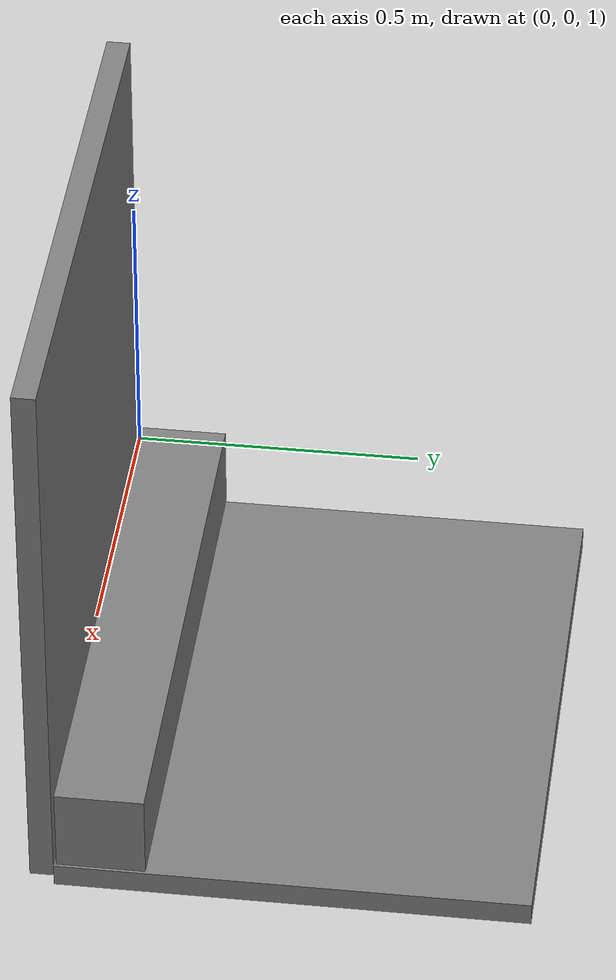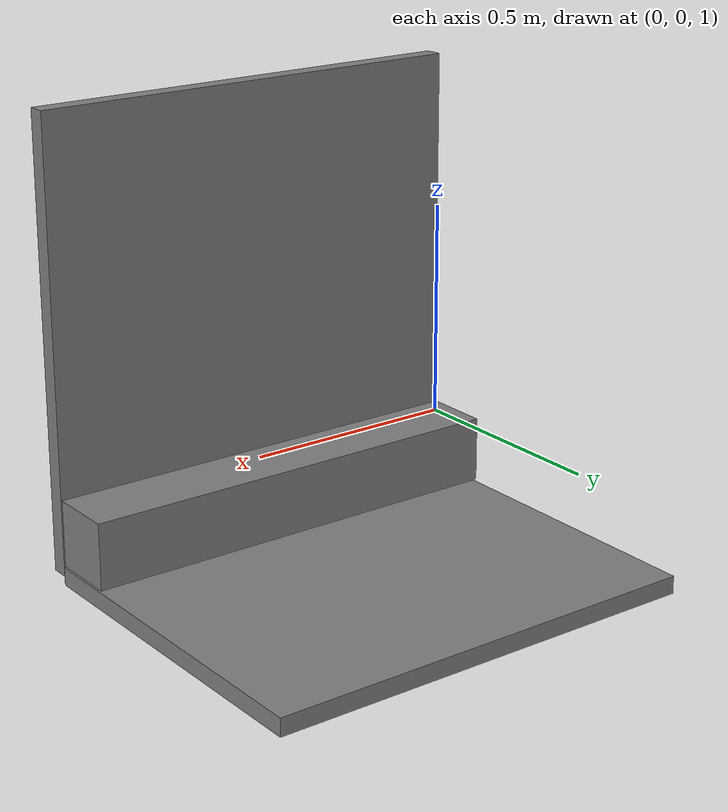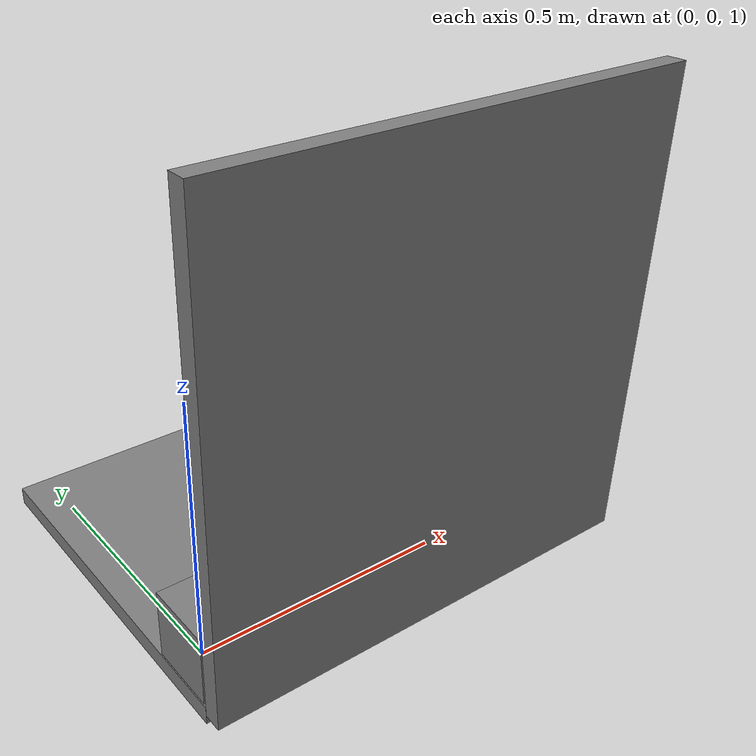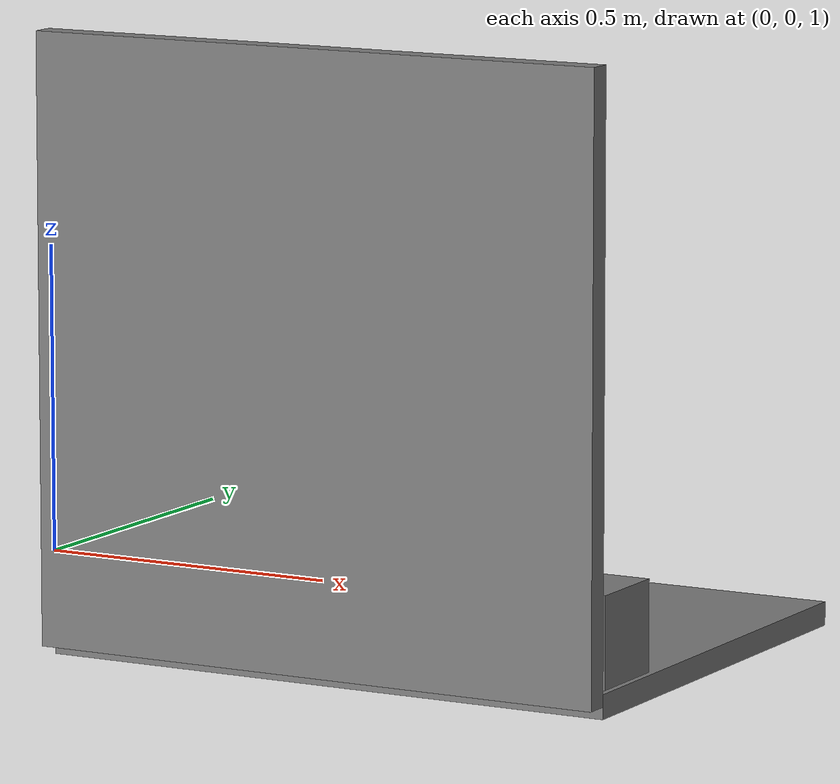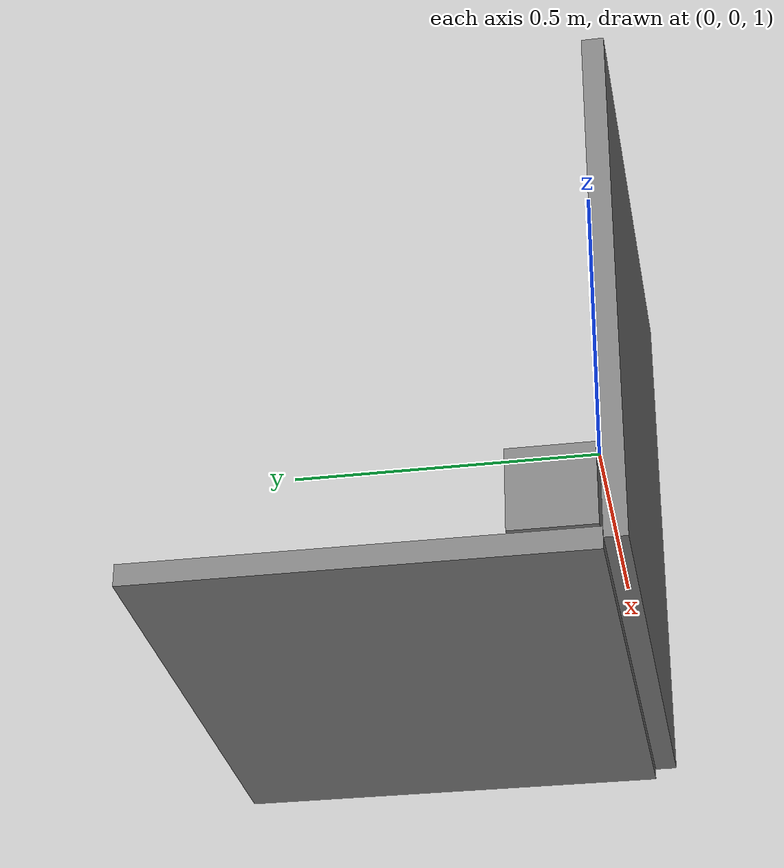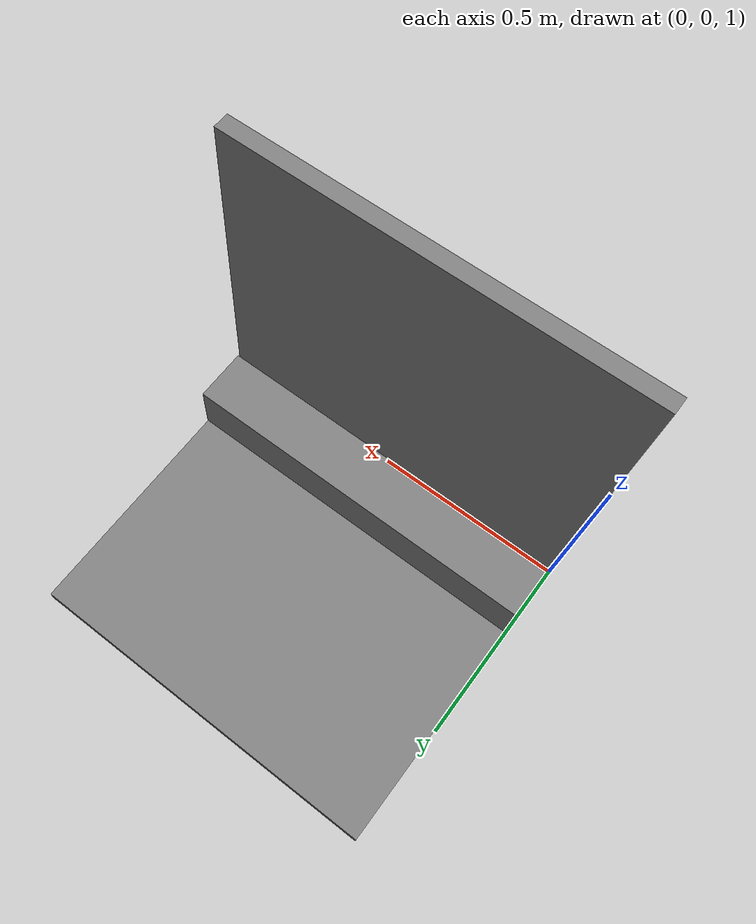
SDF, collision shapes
<?xml version="1.0" ?>
<sdf version="1.4">

<physics type="ode">

      <ode>

        <constraints>
          <contact_max_correcting_vel>0.1</contact_max_correcting_vel>
          <contact_surface_layer>0.0001</contact_surface_layer>
        </constraints>
      </ode>
	<max_contacts>10</max_contacts>
	</physics>

	<model name="tavolo">
	    <static>true</static>
		<link name="link">

		     <collision name="base">
			<pose>0.5 0.4 0.85 0 0 0</pose>
			<geometry>
			  <box>
			    <size>1 0.8 0.04</size>
			  </box>
			</geometry>

				<!-- see https://gazebosim.org/tutorials?tut=physics_params&cat=physics-->
				 <surface>
				  <bounce>
				    <restitution_coefficient>0.01</restitution_coefficient>
				    <threshold>5.0</threshold>
				  </bounce>
				  <friction>
				    <ode>
				      <mu>1</mu>
				      <mu2>1</mu2>
				    </ode>
				  </friction>
				  <contact>
				     <ode>
					<max_vel>0.1</max_vel>
					<min_depth>0.001</min_depth>
				        <kp>1000000.0</kp>
					<kd>1000.0</kd>
				      </ode>
			            </contact>
				</surface>

		     	</collision>

	     			<collision name="box">
				<pose>0.5 0.08 0.95 0 0 0</pose>
				<geometry>
				  <box>
				    <size>1 0.15 0.15</size>
				  </box>
				</geometry>

				 <surface>
				  <bounce>
				    <restitution_coefficient>0.01</restitution_coefficient>
				    <threshold>5.0</threshold>
				  </bounce>
				  <friction>
				    <ode>
				      <mu>1</mu>
				      <mu2>1</mu2>
				    </ode>
				  </friction>
				  <contact>
				     <ode>
					<max_vel>0.1</max_vel>
					<min_depth>0.001</min_depth>
				        <kp>1000000.0</kp>
					<kd>1000.0</kd>
				      </ode>
			            </contact>
				</surface>

			      </collision>

			   <collision name="back">
				<pose>0.5 -0.02 1.35 1.57 0 0</pose>
				<geometry>
				  <box>
				    <size>1 1.0 0.04</size>
				  </box>
				</geometry>

				 <surface>
				  <bounce>
				    <restitution_coefficient>0.01</restitution_coefficient>
				    <threshold>5.0</threshold>
				  </bounce>
				  <friction>
				    <ode>
				      <mu>1</mu>
				      <mu2>1</mu2>
				    </ode>
				  </friction>
				  <contact>
				     <ode>
					<max_vel>0.1</max_vel>
					<min_depth>0.001</min_depth>
				        <kp>1000000.0</kp>
					<kd>1000.0</kd>
				      </ode>
			            </contact>
				</surface>

			      </collision>

			<visual name="visual">
				<geometry>
					<mesh>
						<uri>model://mesh/desk.stl</uri>
                                                <scale>0.001 0.001 0.001</scale>
					</mesh>
				</geometry>
				<material> <!-- Wheel material -->
					<ambient>0.4 0.4 0.4 1</ambient>
					<diffuse>0.5 0.5 0.5 1</diffuse>
					<specular>0 0 0 0</specular>
					<emissive>0 0 0 1</emissive>
				</material> <!-- End wheel material -->
			</visual>
		</link>

		<link name="camera_rgb_frame">
			<inertial>
			<pose>0.069 -0.047 0.107 0 0 0</pose>
			<inertia>
				<ixx>0.001</ixx>
				<ixy>0.000</ixy>
				<ixz>0.000</ixz>
				<iyy>0.001</iyy>
				<iyz>0.000</iyz>
				<izz>0.001</izz>
			</inertia>
			<mass>0.035</mass>
			</inertial>

      <pose>0.069 -0.047 0.107 0 0 0</pose>
			<sensor name="camera" type="camera">
				<always_on>true</always_on>
				<visualize>true</visualize>
				<update_rate>30</update_rate>
				<topic>camera/image_raw</topic>
				<gz_frame_id>camera_rgb_frame</gz_frame_id>
				<camera name="intel_realsense_r200">
					<camera_info_topic>camera/camera_info</camera_info_topic>
					...
				</camera>
			</sensor>
    </link>

	</model>
</sdf>
